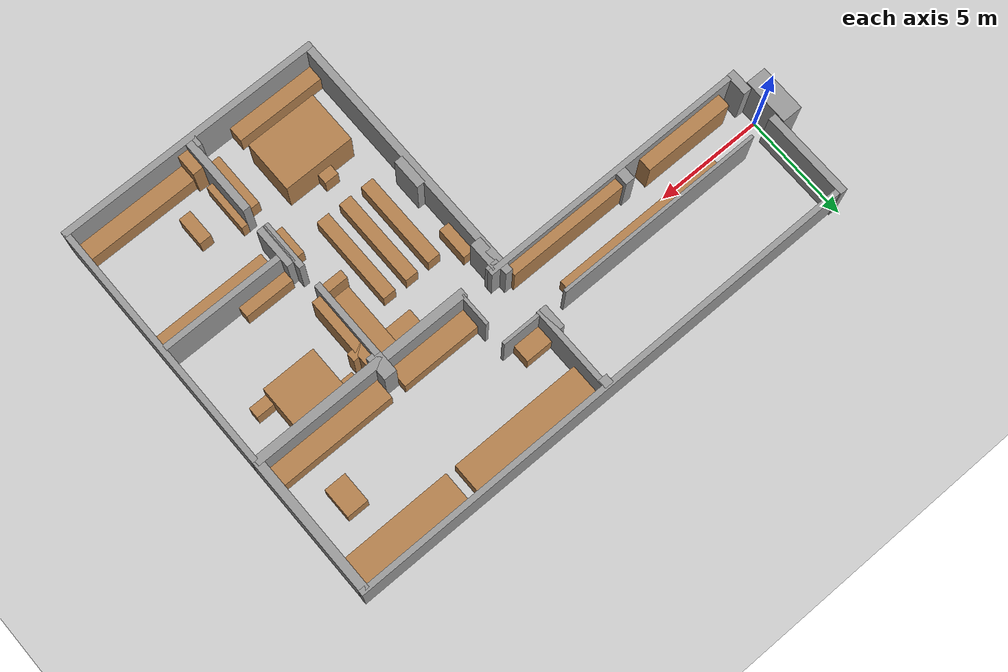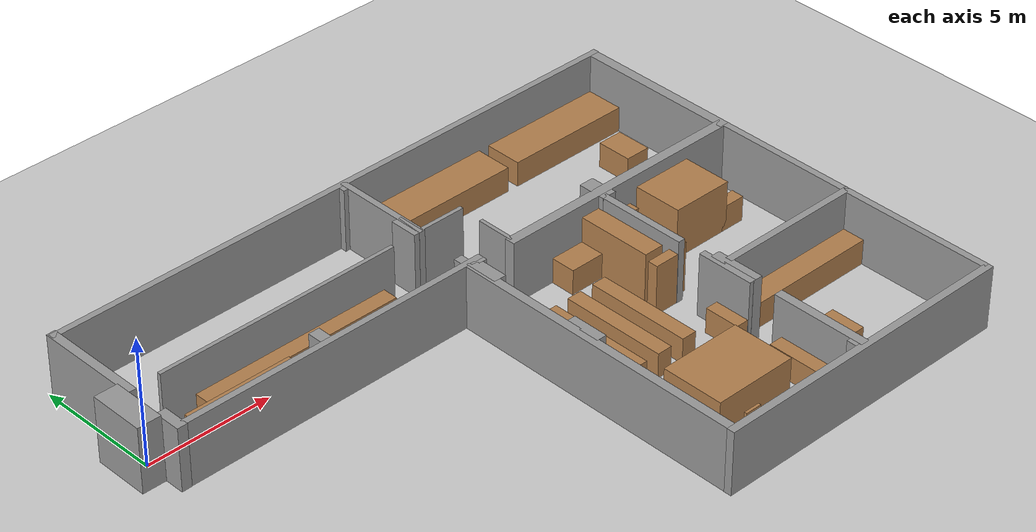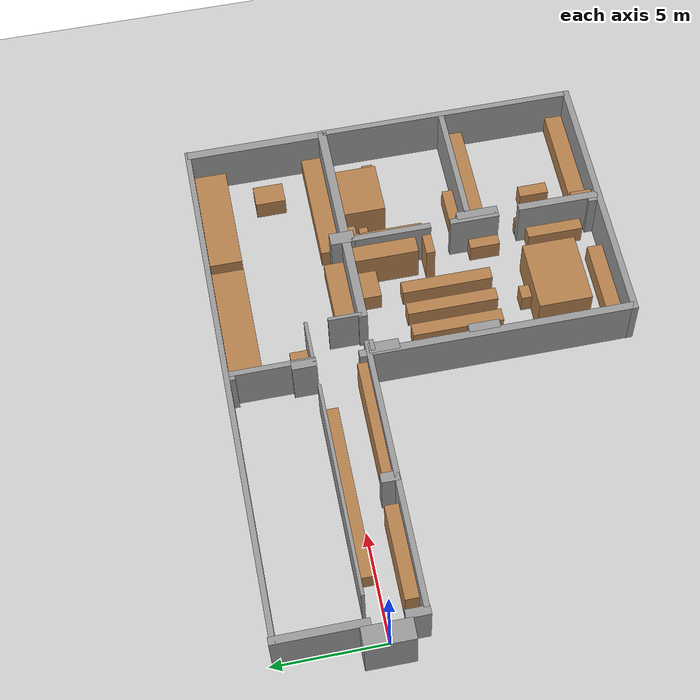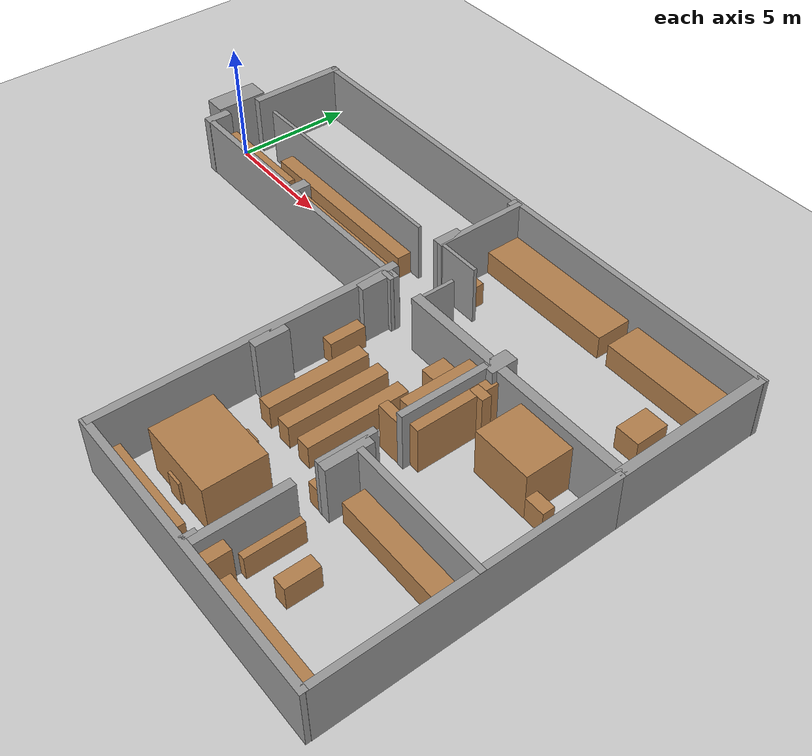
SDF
<sdf version="1.7">
 <world name="default">
  <light name="sun" type="directional">
   <pose>0 0 10 0 -0 0</pose>
   <diffuse>0.8 0.8 0.8 1</diffuse>
   <specular>0.2 0.2 0.2 1</specular>
   <attenuation>
    <range>1000</range>
    <constant>0.9</constant>
    <linear>0.01</linear>
    <quadratic>0.001</quadratic>
   </attenuation>
   <direction>-0.5 0.1 -0.9</direction>
   <spot><inner_angle>0</inner_angle><outer_angle>0</outer_angle><falloff>0</falloff></spot>
  </light>
  <model name="ground_plane">
   <static>1</static>
   <link name="link">
    <collision name="collision">
     <geometry><plane><normal>0 0 1</normal><size>100 100</size></plane></geometry>
     <surface>
      <contact><collide_bitmask>65535</collide_bitmask></contact>
      <friction><ode><mu>100</mu><mu2>50</mu2></ode></friction>
     </surface>
    </collision>
    <visual name="visual">
     <cast_shadows>0</cast_shadows>
     <geometry><plane><normal>0 0 1</normal><size>100 100</size></plane></geometry>
     <material>
      <script><uri>file://media/materials/scripts/gazebo.material</uri><name>Gazebo/Grey</name></script>
     </material>
    </visual>
   </link>
  </model>
  <gravity>0 0 -9.8</gravity>
  <magnetic_field>6e-06 2.3e-05 -4.2e-05</magnetic_field>
  <atmosphere type="adiabatic"/>
  <physics type="ode">
   <max_step_size>0.001</max_step_size>
   <real_time_factor>1</real_time_factor>
   <real_time_update_rate>1000</real_time_update_rate>
  </physics>
  <scene><ambient>0.4 0.4 0.4 1</ambient><background>0.7 0.7 0.7 1</background><shadows>1</shadows></scene>
  <spherical_coordinates>
   <surface_model>EARTH_WGS84</surface_model>
   <latitude_deg>0</latitude_deg>
   <longitude_deg>0</longitude_deg>
   <elevation>0</elevation>
   <heading_deg>0</heading_deg>
  </spherical_coordinates>
  <model name="pb">
   <pose>12.22 -4.38003 0 0 -0 3.14159</pose>
   <link name="Wall_10">
    <collision name="Wall_10_Collision">
     <geometry><box><size>4.123 0.35 2.5</size></box></geometry>
     <pose>0 0 1.25 0 -0 0</pose>
    </collision>
    <visual name="Wall_10_Visual">
     <pose>0 0 1.25 0 -0 0</pose>
     <geometry><box><size>4.123 0.35 2.5</size></box></geometry>
     <material>
      <script><uri>file://media/materials/scripts/gazebo.material</uri><name>Gazebo/Grey</name></script>
      <ambient>1 1 1 1</ambient>
     </material>
     <meta><layer>0</layer></meta>
    </visual>
    <pose>12.0345 -7.14851 0 0 -0 -1.5708</pose>
   </link>
   <link name="Wall_12">
    <collision name="Wall_12_Collision">
     <geometry><box><size>24.38 0.25 2.5</size></box></geometry>
     <pose>0 0 1.25 0 -0 0</pose>
    </collision>
    <visual name="Wall_12_Visual">
     <pose>0 0 1.25 0 -0 0</pose>
     <geometry><box><size>24.38 0.25 2.5</size></box></geometry>
     <material>
      <script><uri>file://media/materials/scripts/gazebo.material</uri><name>Gazebo/Grey</name></script>
      <ambient>1 1 1 1</ambient>
     </material>
     <meta><layer>0</layer></meta>
    </visual>
    <pose>-0.030495 -9.03401 0 0 -0 3.14151</pose>
   </link>
   <link name="Wall_16">
    <collision name="Wall_16_Collision">
     <geometry><box><size>6.5 0.4 2.5</size></box></geometry>
     <pose>0 0 1.25 0 -0 0</pose>
    </collision>
    <visual name="Wall_16_Visual">
     <pose>0 0 1.25 0 -0 0</pose>
     <geometry><box><size>6.5 0.4 2.5</size></box></geometry>
     <material>
      <script><uri>file://media/materials/scripts/gazebo.material</uri><name>Gazebo/Grey</name></script>
      <ambient>1 1 1 1</ambient>
     </material>
     <meta><layer>0</layer></meta>
    </visual>
    <pose>-12.0069 -5.81143 0 0 -0 -1.5708</pose>
   </link>
   <link name="Wall_18">
    <collision name="Wall_18_Collision">
     <geometry><box><size>9.8 0.15 2.5</size></box></geometry>
     <pose>0 0 1.25 0 -0 0</pose>
    </collision>
    <visual name="Wall_18_Visual">
     <pose>0 0 1.25 0 -0 0</pose>
     <geometry><box><size>9.8 0.15 2.5</size></box></geometry>
     <material>
      <script><uri>file://media/materials/scripts/gazebo.material</uri><name>Gazebo/Grey</name></script>
      <ambient>1 1 1 1</ambient>
     </material>
     <meta><layer>0</layer></meta>
    </visual>
    <pose>6.0015 -5.19601 0 0 -0 0</pose>
   </link>
   <link name="Wall_20">
    <collision name="Wall_20_Collision">
     <geometry><box><size>3.95 0.25 2.5</size></box></geometry>
     <pose>0 0 1.25 0 -0 0</pose>
    </collision>
    <visual name="Wall_20_Visual">
     <pose>0 0 1.25 0 -0 0</pose>
     <geometry><box><size>3.95 0.25 2.5</size></box></geometry>
     <material>
      <script><uri>file://media/materials/scripts/gazebo.material</uri><name>Gazebo/Grey</name></script>
      <ambient>1 1 1 1</ambient>
     </material>
     <meta><layer>0</layer></meta>
    </visual>
    <pose>-0.153495 -7.09801 0 0 -0 -1.5708</pose>
   </link>
   <link name="Wall_23">
    <collision name="Wall_23_Collision">
     <geometry><box><size>1.1 0.4 2.5</size></box></geometry>
     <pose>0 0 1.25 0 -0 0</pose>
    </collision>
    <visual name="Wall_23_Visual">
     <pose>0 0 1.25 0 -0 0</pose>
     <geometry><box><size>1.1 0.4 2.5</size></box></geometry>
     <material>
      <script><uri>file://media/materials/scripts/gazebo.material</uri><name>Gazebo/Grey</name></script>
      <ambient>1 1 1 1</ambient>
     </material>
     <meta><layer>0</layer></meta>
    </visual>
    <pose>-0.007495 -5.67401 0 0 -0 1.5708</pose>
   </link>
   <link name="Wall_25">
    <collision name="Wall_25_Collision">
     <geometry><box><size>0.41 0.4 2.5</size></box></geometry>
     <pose>0 0 1.25 0 -0 0</pose>
    </collision>
    <visual name="Wall_25_Visual">
     <pose>0 0 1.25 0 -0 0</pose>
     <geometry><box><size>0.41 0.4 2.5</size></box></geometry>
     <material>
      <script><uri>file://media/materials/scripts/gazebo.material</uri><name>Gazebo/Grey</name></script>
      <ambient>1 1 1 1</ambient>
     </material>
     <meta><layer>0</layer></meta>
    </visual>
    <pose>-0.041995 -8.87101 0 0 -0 1.5708</pose>
   </link>
   <link name="Wall_27">
    <collision name="Wall_27_Collision">
     <geometry><box><size>1.8 0.15 2.5</size></box></geometry>
     <pose>0 0 1.25 0 -0 0</pose>
    </collision>
    <visual name="Wall_27_Visual">
     <pose>0 0 1.25 0 -0 0</pose>
     <geometry><box><size>1.8 0.15 2.5</size></box></geometry>
     <material>
      <script><uri>file://media/materials/scripts/gazebo.material</uri><name>Gazebo/Grey</name></script>
      <ambient>1 1 1 1</ambient>
     </material>
     <meta><layer>0</layer></meta>
    </visual>
    <pose>-1.15254 -5.24313 0 0 -0 0</pose>
   </link>
   <link name="Wall_29">
    <collision name="Wall_29_Collision">
     <geometry><box><size>1.5 0.15 2.5</size></box></geometry>
     <pose>0 0 1.25 0 -0 0</pose>
    </collision>
    <visual name="Wall_29_Visual">
     <pose>0 0 1.25 0 -0 0</pose>
     <geometry><box><size>1.5 0.15 2.5</size></box></geometry>
     <material>
      <script><uri>file://media/materials/scripts/gazebo.material</uri><name>Gazebo/Grey</name></script>
      <ambient>1 1 1 1</ambient>
     </material>
     <meta><layer>0</layer></meta>
    </visual>
    <pose>-2.00363 -3.50726 0 0 -0 1.5708</pose>
   </link>
   <link name="Wall_34">
    <collision name="Wall_34_Collision">
     <geometry><box><size>10.25 0.4 2.5</size></box></geometry>
     <pose>0 0 1.25 0 -0 0</pose>
    </collision>
    <visual name="Wall_34_Visual">
     <pose>0 0 1.25 0 -0 0</pose>
     <geometry><box><size>10.25 0.4 2.5</size></box></geometry>
     <material>
      <script><uri>file://media/materials/scripts/gazebo.material</uri><name>Gazebo/Grey</name></script>
      <ambient>1 1 1 1</ambient>
     </material>
     <meta><layer>0</layer></meta>
    </visual>
    <pose>-6.96748 -2.71699 0 0 -0 0</pose>
   </link>
   <link name="Wall_36">
    <collision name="Wall_36_Collision">
     <geometry><box><size>1.1 0.6 2.5</size></box></geometry>
     <pose>0 0 1.25 0 -0 0</pose>
    </collision>
    <visual name="Wall_36_Visual">
     <pose>0 0 1.25 0 -0 0</pose>
     <geometry><box><size>1.1 0.6 2.5</size></box></geometry>
     <material>
      <script><uri>file://media/materials/scripts/gazebo.material</uri><name>Gazebo/Grey</name></script>
      <ambient>1 1 1 1</ambient>
     </material>
     <meta><layer>0</layer></meta>
    </visual>
    <pose>-6.10348 -2.86833 0 0 -0 1.5708</pose>
   </link>
   <link name="Wall_38">
    <collision name="Wall_38_Collision">
     <geometry><box><size>1.05 0.4 2.5</size></box></geometry>
     <pose>0 0 1.25 0 -0 0</pose>
    </collision>
    <visual name="Wall_38_Visual">
     <pose>0 0 1.25 0 -0 0</pose>
     <geometry><box><size>1.05 0.4 2.5</size></box></geometry>
     <material>
      <script><uri>file://media/materials/scripts/gazebo.material</uri><name>Gazebo/Grey</name></script>
      <ambient>1 1 1 1</ambient>
     </material>
     <meta><layer>0</layer></meta>
    </visual>
    <pose>12.0205 -3.17766 0 0 -0 1.5708</pose>
   </link>
   <link name="Wall_40">
    <collision name="Wall_40_Collision">
     <geometry><box><size>12.5 0.25 2.5</size></box></geometry>
     <pose>0 0 1.25 0 -0 0</pose>
    </collision>
    <visual name="Wall_40_Visual">
     <pose>0 0 1.25 0 -0 0</pose>
     <geometry><box><size>12.5 0.25 2.5</size></box></geometry>
     <material>
      <script><uri>file://media/materials/scripts/gazebo.material</uri><name>Gazebo/Grey</name></script>
      <ambient>1 1 1 1</ambient>
     </material>
     <meta><layer>0</layer></meta>
    </visual>
    <pose>5.63251 -2.79401 0 0 -0 0</pose>
   </link>
   <link name="Wall_42">
    <collision name="Wall_42_Collision">
     <geometry><box><size>3.63 0.28 2.5</size></box></geometry>
     <pose>0 0 1.25 0 -0 0</pose>
    </collision>
    <visual name="Wall_42_Visual">
     <pose>0 0 1.25 0 -0 0</pose>
     <geometry><box><size>3.63 0.28 2.5</size></box></geometry>
     <material>
      <script><uri>file://media/materials/scripts/gazebo.material</uri><name>Gazebo/Grey</name></script>
      <ambient>1 1 1 1</ambient>
     </material>
     <meta><layer>0</layer></meta>
    </visual>
    <pose>-5.95449 -0.64001 0 0 -0 -1.5708</pose>
   </link>
   <link name="Wall_44">
    <collision name="Wall_44_Collision">
     <geometry><box><size>12.35 0.35 2.5</size></box></geometry>
     <pose>0 0 1.25 0 -0 0</pose>
    </collision>
    <visual name="Wall_44_Visual">
     <pose>0 0 1.25 0 -0 0</pose>
     <geometry><box><size>12.35 0.35 2.5</size></box></geometry>
     <material>
      <script><uri>file://media/materials/scripts/gazebo.material</uri><name>Gazebo/Grey</name></script>
      <ambient>1 1 1 1</ambient>
     </material>
     <meta><layer>0</layer></meta>
    </visual>
    <pose>-0.014364 2.93286 0 0 -0 1.5708</pose>
   </link>
   <link name="Wall_46">
    <collision name="Wall_46_Collision">
     <geometry><box><size>0.8 0.45 2.5</size></box></geometry>
     <pose>0 0 1.25 0 -0 0</pose>
    </collision>
    <visual name="Wall_46_Visual">
     <pose>0 0 1.25 0 -0 0</pose>
     <geometry><box><size>0.8 0.45 2.5</size></box></geometry>
     <material>
      <script><uri>file://media/materials/scripts/gazebo.material</uri><name>Gazebo/Grey</name></script>
      <ambient>1 1 1 1</ambient>
     </material>
     <meta><layer>0</layer></meta>
    </visual>
    <pose>5.99173 -3.10066 0 0 -0 1.5708</pose>
   </link>
   <link name="Wall_48">
    <collision name="Wall_48_Collision">
     <geometry><box><size>1.35 0.5 2.5</size></box></geometry>
     <pose>0 0 1.25 0 -0 0</pose>
    </collision>
    <visual name="Wall_48_Visual">
     <pose>0 0 1.25 0 -0 0</pose>
     <geometry><box><size>1.35 0.5 2.5</size></box></geometry>
     <material>
      <script><uri>file://media/materials/scripts/gazebo.material</uri><name>Gazebo/Grey</name></script>
      <ambient>1 1 1 1</ambient>
     </material>
     <meta><layer>0</layer></meta>
    </visual>
    <pose>-0.197695 -2.11458 0 0 -0 -1.5708</pose>
   </link>
   <link name="Wall_50">
    <collision name="Wall_50_Collision">
     <geometry><box><size>0.55 0.2 2.5</size></box></geometry>
     <pose>0 0 1.25 0 -0 0</pose>
    </collision>
    <visual name="Wall_50_Visual">
     <pose>0 0 1.25 0 -0 0</pose>
     <geometry><box><size>0.55 0.2 2.5</size></box></geometry>
     <material>
      <script><uri>file://media/materials/scripts/gazebo.material</uri><name>Gazebo/Grey</name></script>
      <ambient>1 1 1 1</ambient>
     </material>
     <meta><layer>0</layer></meta>
    </visual>
    <pose>-0.33972 -2.61533 0 0 -0 0</pose>
   </link>
   <link name="Wall_52">
    <collision name="Wall_52_Collision">
     <geometry><box><size>1.4 0.4 2.5</size></box></geometry>
     <pose>0 0 1.25 0 -0 0</pose>
    </collision>
    <visual name="Wall_52_Visual">
     <pose>0 0 1.25 0 -0 0</pose>
     <geometry><box><size>1.4 0.4 2.5</size></box></geometry>
     <material>
      <script><uri>file://media/materials/scripts/gazebo.material</uri><name>Gazebo/Grey</name></script>
      <ambient>1 1 1 1</ambient>
     </material>
     <meta><layer>0</layer></meta>
    </visual>
    <pose>-0.31592 2.37269 0 0 -0 -1.5708</pose>
   </link>
   <link name="Wall_54">
    <collision name="Wall_54_Collision">
     <geometry><box><size>2.25 0.27 2.5</size></box></geometry>
     <pose>0 0 1.25 0 -0 0</pose>
    </collision>
    <visual name="Wall_54_Visual">
     <pose>0 0 1.25 0 -0 0</pose>
     <geometry><box><size>2.25 0.27 2.5</size></box></geometry>
     <material>
      <script><uri>file://media/materials/scripts/gazebo.material</uri><name>Gazebo/Grey</name></script>
      <ambient>1 1 1 1</ambient>
     </material>
     <meta><layer>0</layer></meta>
    </visual>
    <pose>-5.96272 3.21444 0 0 -0 1.5708</pose>
   </link>
   <link name="Wall_56">
    <collision name="Wall_56_Collision">
     <geometry><box><size>1.9 0.4 2.5</size></box></geometry>
     <pose>0 0 1.25 0 -0 0</pose>
    </collision>
    <visual name="Wall_56_Visual">
     <pose>0 0 1.25 0 -0 0</pose>
     <geometry><box><size>1.9 0.4 2.5</size></box></geometry>
     <material>
      <script><uri>file://media/materials/scripts/gazebo.material</uri><name>Gazebo/Grey</name></script>
      <ambient>1 1 1 1</ambient>
     </material>
     <meta><layer>0</layer></meta>
    </visual>
    <pose>-6.2015 3.39287 0 0 -0 -1.5708</pose>
   </link>
   <link name="Wall_58">
    <collision name="Wall_58_Collision">
     <geometry><box><size>5.9 0.27 2.5</size></box></geometry>
     <pose>0 0 1.25 0 -0 0</pose>
    </collision>
    <visual name="Wall_58_Visual">
     <pose>0 0 1.25 0 -0 0</pose>
     <geometry><box><size>5.9 0.27 2.5</size></box></geometry>
     <material>
      <script><uri>file://media/materials/scripts/gazebo.material</uri><name>Gazebo/Grey</name></script>
      <ambient>1 1 1 1</ambient>
     </material>
     <meta><layer>0</layer></meta>
    </visual>
    <pose>-9.2455 2.96577 0 0 -0 0</pose>
   </link>
   <link name="Wall_60">
    <collision name="Wall_60_Collision">
     <geometry><box><size>11.7 0.27 2.5</size></box></geometry>
     <pose>0 0 1.25 0 -0 0</pose>
    </collision>
    <visual name="Wall_60_Visual">
     <pose>0 0 1.25 0 -0 0</pose>
     <geometry><box><size>11.7 0.27 2.5</size></box></geometry>
     <material>
      <script><uri>file://media/materials/scripts/gazebo.material</uri><name>Gazebo/Grey</name></script>
      <ambient>1 1 1 1</ambient>
     </material>
     <meta><layer>0</layer></meta>
    </visual>
    <pose>-12.071 3.16852 0 0 -0 -1.5708</pose>
   </link>
   <link name="Wall_62">
    <collision name="Wall_62_Collision">
     <geometry><box><size>12.365 0.3 2.5</size></box></geometry>
     <pose>0 0 1.25 0 -0 0</pose>
    </collision>
    <visual name="Wall_62_Visual">
     <pose>0 0 1.25 0 -0 0</pose>
     <geometry><box><size>12.365 0.3 2.5</size></box></geometry>
     <material>
      <script><uri>file://media/materials/scripts/gazebo.material</uri><name>Gazebo/Grey</name></script>
      <ambient>1 1 1 1</ambient>
     </material>
     <meta><layer>0</layer></meta>
    </visual>
    <pose>-6.01551 9.06001 0 0 -0 0</pose>
   </link>
   <link name="Wall_64">
    <collision name="Wall_64_Collision">
     <geometry><box><size>3.7 0.35 2.5</size></box></geometry>
     <pose>0 0 1.25 0 -0 0</pose>
    </collision>
    <visual name="Wall_64_Visual">
     <pose>0 0 1.25 0 -0 0</pose>
     <geometry><box><size>3.7 0.35 2.5</size></box></geometry>
     <material>
      <script><uri>file://media/materials/scripts/gazebo.material</uri><name>Gazebo/Grey</name></script>
      <ambient>1 1 1 1</ambient>
     </material>
     <meta><layer>0</layer></meta>
    </visual>
    <pose>-6.11949 7.15048 0 0 -0 1.5708</pose>
   </link>
   <link name="Wall_66">
    <collision name="Wall_66_Collision">
     <geometry><box><size>0.55 0.2 2.5</size></box></geometry>
     <pose>0 0 1.25 0 -0 0</pose>
    </collision>
    <visual name="Wall_66_Visual">
     <pose>0 0 1.25 0 -0 0</pose>
     <geometry><box><size>0.55 0.2 2.5</size></box></geometry>
     <material>
      <script><uri>file://media/materials/scripts/gazebo.material</uri><name>Gazebo/Grey</name></script>
      <ambient>1 1 1 1</ambient>
     </material>
     <meta><layer>0</layer></meta>
    </visual>
    <pose>-5.87619 8.80038 0 0 -0 1.5708</pose>
   </link>
   <static>1</static>
  </model>
  <model name="pb_koniec">
   <pose>12.11 -4.38 0 0 -0 0</pose>
   <link name="Wall_0">
    <collision name="Wall_0_Collision">
     <geometry><box><size>4.23 0.61 2</size></box></geometry>
     <pose>0 0 1 0 -0 0</pose>
    </collision>
    <visual name="Wall_0_Visual">
     <pose>0 0 1 0 -0 0</pose>
     <geometry><box><size>4.23 0.61 2</size></box></geometry>
     <material>
      <script><uri>file://media/materials/scripts/gazebo.material</uri><name>Gazebo/Wood</name></script>
      <ambient>1 1 1 1</ambient>
     </material>
     <meta><layer>0</layer></meta>
    </visual>
    <pose>-9.01941 3.25059 0 0 -0 0</pose>
   </link>
   <link name="Wall_101">
    <collision name="Wall_101_Collision">
     <geometry><box><size>1 0.5 1</size></box></geometry>
     <pose>0 0 0.5 0 -0 0</pose>
    </collision>
    <visual name="Wall_101_Visual">
     <pose>0 0 0.5 0 -0 0</pose>
     <geometry><box><size>1 0.5 1</size></box></geometry>
     <material>
      <script><uri>file://media/materials/scripts/gazebo.material</uri><name>Gazebo/Wood</name></script>
      <ambient>1 1 1 1</ambient>
     </material>
     <meta><layer>0</layer></meta>
    </visual>
    <pose>7.59 2.28 0 0 -0 0</pose>
   </link>
   <link name="Wall_103">
    <collision name="Wall_103_Collision">
     <geometry><box><size>1 0.5 1</size></box></geometry>
     <pose>0 0 0.5 0 -0 0</pose>
    </collision>
    <visual name="Wall_103_Visual">
     <pose>0 0 0.5 0 -0 0</pose>
     <geometry><box><size>1 0.5 1</size></box></geometry>
     <material>
      <script><uri>file://media/materials/scripts/gazebo.material</uri><name>Gazebo/Wood</name></script>
      <ambient>1 1 1 1</ambient>
     </material>
     <meta><layer>0</layer></meta>
    </visual>
    <pose>10.518 0.835 0 0 -0 0</pose>
   </link>
   <link name="Wall_12">
    <collision name="Wall_12_Collision">
     <geometry><box><size>5.451 0.9 1</size></box></geometry>
     <pose>0 0 0.5 0 -0 0</pose>
    </collision>
    <visual name="Wall_12_Visual">
     <pose>0 0 0.5 0 -0 0</pose>
     <geometry><box><size>5.451 0.9 1</size></box></geometry>
     <material>
      <script><uri>file://media/materials/scripts/gazebo.material</uri><name>Gazebo/Wood</name></script>
      <ambient>1 1 1 1</ambient>
     </material>
     <meta><layer>0</layer></meta>
    </visual>
    <pose>9.2655 3.364 0 0 -0 0</pose>
   </link>
   <link name="Wall_18">
    <collision name="Wall_18_Collision">
     <geometry><box><size>1.38 1 1</size></box></geometry>
     <pose>0 0 0.5 0 -0 0</pose>
    </collision>
    <visual name="Wall_18_Visual">
     <pose>0 0 0.5 0 -0 0</pose>
     <geometry><box><size>1.38 1 1</size></box></geometry>
     <material>
      <script><uri>file://media/materials/scripts/gazebo.material</uri><name>Gazebo/Wood</name></script>
      <ambient>1 1 1 1</ambient>
     </material>
     <meta><layer>0</layer></meta>
    </visual>
    <pose>10.31 5.62 0 0 -0 -1.5708</pose>
   </link>
   <link name="Wall_2">
    <collision name="Wall_2_Collision">
     <geometry><box><size>5.62 0.45 2</size></box></geometry>
     <pose>0 0 1 0 -0 0</pose>
    </collision>
    <visual name="Wall_2_Visual">
     <pose>0 0 1 0 -0 0</pose>
     <geometry><box><size>5.62 0.45 2</size></box></geometry>
     <material>
      <script><uri>file://media/materials/scripts/gazebo.material</uri><name>Gazebo/Wood</name></script>
      <ambient>1 1 1 1</ambient>
     </material>
     <meta><layer>0</layer></meta>
    </visual>
    <pose>-2.855 3.15 0 0 -0 0</pose>
   </link>
   <link name="Wall_20">
    <collision name="Wall_20_Collision">
     <geometry><box><size>6.04 1.5 1</size></box></geometry>
     <pose>0 0 0.5 0 -0 0</pose>
    </collision>
    <visual name="Wall_20_Visual">
     <pose>0 0 0.5 0 -0 0</pose>
     <geometry><box><size>6.04 1.5 1</size></box></geometry>
     <material>
      <script><uri>file://media/materials/scripts/gazebo.material</uri><name>Gazebo/Wood</name></script>
      <ambient>1 1 1 1</ambient>
     </material>
     <meta><layer>0</layer></meta>
    </visual>
    <pose>3.4 8.18 0 0 -0 0</pose>
   </link>
   <link name="Wall_22">
    <collision name="Wall_22_Collision">
     <geometry><box><size>5.05 1.5 1</size></box></geometry>
     <pose>0 0 0.5 0 -0 0</pose>
    </collision>
    <visual name="Wall_22_Visual">
     <pose>0 0 0.5 0 -0 0</pose>
     <geometry><box><size>5.05 1.5 1</size></box></geometry>
     <material>
      <script><uri>file://media/materials/scripts/gazebo.material</uri><name>Gazebo/Wood</name></script>
      <ambient>1 1 1 1</ambient>
     </material>
     <meta><layer>0</layer></meta>
    </visual>
    <pose>9.395 8.18 0 0 -0 0</pose>
   </link>
   <link name="Wall_26">
    <collision name="Wall_26_Collision">
     <geometry><box><size>1.5 0.5 1</size></box></geometry>
     <pose>0 0 0.5 0 -0 0</pose>
    </collision>
    <visual name="Wall_26_Visual">
     <pose>0 0 0.5 0 -0 0</pose>
     <geometry><box><size>1.5 0.5 1</size></box></geometry>
     <material>
      <script><uri>file://media/materials/scripts/gazebo.material</uri><name>Gazebo/Wood</name></script>
      <ambient>1 1 1 1</ambient>
     </material>
     <meta><layer>0</layer></meta>
    </visual>
    <pose>0.540001 0.57 0 0 -0 1.5708</pose>
   </link>
   <link name="Wall_28">
    <collision name="Wall_28_Collision">
     <geometry><box><size>4.14 0.6 1</size></box></geometry>
     <pose>0 0 0.5 0 -0 0</pose>
    </collision>
    <visual name="Wall_28_Visual">
     <pose>0 0 0.5 0 -0 0</pose>
     <geometry><box><size>4.14 0.6 1</size></box></geometry>
     <material>
      <script><uri>file://media/materials/scripts/gazebo.material</uri><name>Gazebo/Wood</name></script>
      <ambient>1 1 1 1</ambient>
     </material>
     <meta><layer>0</layer></meta>
    </visual>
    <pose>1.71 -1.496 0 0 -0 -1.5708</pose>
   </link>
   <link name="Wall_32">
    <collision name="Wall_32_Collision">
     <geometry><box><size>4.14 0.6 1</size></box></geometry>
     <pose>0 0 0.5 0 -0 0</pose>
    </collision>
    <visual name="Wall_32_Visual">
     <pose>0 0 0.5 0 -0 0</pose>
     <geometry><box><size>4.14 0.6 1</size></box></geometry>
     <material>
      <script><uri>file://media/materials/scripts/gazebo.material</uri><name>Gazebo/Wood</name></script>
      <ambient>1 1 1 1</ambient>
     </material>
     <meta><layer>0</layer></meta>
    </visual>
    <pose>2.84 -1.496 0 0 -0 -1.5708</pose>
   </link>
   <link name="Wall_34">
    <collision name="Wall_34_Collision">
     <geometry><box><size>4.14 0.6 1</size></box></geometry>
     <pose>0 0 0.5 0 -0 0</pose>
    </collision>
    <visual name="Wall_34_Visual">
     <pose>0 0 0.5 0 -0 0</pose>
     <geometry><box><size>4.14 0.6 1</size></box></geometry>
     <material>
      <script><uri>file://media/materials/scripts/gazebo.material</uri><name>Gazebo/Wood</name></script>
      <ambient>1 1 1 1</ambient>
     </material>
     <meta><layer>0</layer></meta>
    </visual>
    <pose>3.98 -1.496 0 0 -0 -1.5708</pose>
   </link>
   <link name="Wall_4">
    <collision name="Wall_4_Collision">
     <geometry><box><size>8 0.62 1</size></box></geometry>
     <pose>0 0 0.5 0 -0 0</pose>
    </collision>
    <visual name="Wall_4_Visual">
     <pose>0 0 0.5 0 -0 0</pose>
     <geometry><box><size>8 0.62 1</size></box></geometry>
     <material>
      <script><uri>file://media/materials/scripts/gazebo.material</uri><name>Gazebo/Wood</name></script>
      <ambient>1 1 1 1</ambient>
     </material>
     <meta><layer>0</layer></meta>
    </visual>
    <pose>-5.47 4.825 0 0 -0 0</pose>
   </link>
   <link name="Wall_40">
    <collision name="Wall_40_Collision">
     <geometry><box><size>0.99 0.4 2</size></box></geometry>
     <pose>0 0 1 0 -0 0</pose>
    </collision>
    <visual name="Wall_40_Visual">
     <pose>0 0 1 0 -0 0</pose>
     <geometry><box><size>0.99 0.4 2</size></box></geometry>
     <material>
      <script><uri>file://media/materials/scripts/gazebo.material</uri><name>Gazebo/Wood</name></script>
      <ambient>1 1 1 1</ambient>
     </material>
     <meta><layer>0</layer></meta>
    </visual>
    <pose>5.43 -0.96 0 0 -0 0</pose>
   </link>
   <link name="Wall_43">
    <collision name="Wall_43_Collision">
     <geometry><box><size>3 0.79 2</size></box></geometry>
     <pose>0 0 1 0 -0 0</pose>
    </collision>
    <visual name="Wall_43_Visual">
     <pose>0 0 1 0 -0 0</pose>
     <geometry><box><size>3 0.79 2</size></box></geometry>
     <material>
      <script><uri>file://media/materials/scripts/gazebo.material</uri><name>Gazebo/Wood</name></script>
      <ambient>1 1 1 1</ambient>
     </material>
     <meta><layer>0</layer></meta>
    </visual>
    <pose>5.53 1.055 0 0 -0 1.5708</pose>
   </link>
   <link name="Wall_47">
    <collision name="Wall_47_Collision">
     <geometry><box><size>1.38 1 1</size></box></geometry>
     <pose>0 0 0.5 0 -0 0</pose>
    </collision>
    <visual name="Wall_47_Visual">
     <pose>0 0 0.5 0 -0 0</pose>
     <geometry><box><size>1.38 1 1</size></box></geometry>
     <material>
      <script><uri>file://media/materials/scripts/gazebo.material</uri><name>Gazebo/Wood</name></script>
      <ambient>1 1 1 1</ambient>
     </material>
     <meta><layer>0</layer></meta>
    </visual>
    <pose>4.45 2.052 0 0 -0 0</pose>
   </link>
   <link name="Wall_52">
    <collision name="Wall_52_Collision">
     <geometry><box><size>1.38 0.51 1</size></box></geometry>
     <pose>0 0 0.5 0 -0 0</pose>
    </collision>
    <visual name="Wall_52_Visual">
     <pose>0 0 0.5 0 -0 0</pose>
     <geometry><box><size>1.38 0.51 1</size></box></geometry>
     <material>
      <script><uri>file://media/materials/scripts/gazebo.material</uri><name>Gazebo/Wood</name></script>
      <ambient>1 1 1 1</ambient>
     </material>
     <meta><layer>0</layer></meta>
    </visual>
    <pose>5.69 -3.635 0 0 -0 -1.5708</pose>
   </link>
   <link name="Wall_55">
    <collision name="Wall_55_Collision">
     <geometry><box><size>2.56 0.56 1</size></box></geometry>
     <pose>0 0 0.5 0 -0 0</pose>
    </collision>
    <visual name="Wall_55_Visual">
     <pose>0 0 0.5 0 -0 0</pose>
     <geometry><box><size>2.56 0.56 1</size></box></geometry>
     <material>
      <script><uri>file://media/materials/scripts/gazebo.material</uri><name>Gazebo/Wood</name></script>
      <ambient>1 1 1 1</ambient>
     </material>
     <meta><layer>0</layer></meta>
    </visual>
    <pose>5.775 -6.9805 0 0 -0 -1.5708</pose>
   </link>
   <link name="Wall_59">
    <collision name="Wall_59_Collision">
     <geometry><box><size>4.14 0.7 1</size></box></geometry>
     <pose>0 0 0.5 0 -0 0</pose>
    </collision>
    <visual name="Wall_59_Visual">
     <pose>0 0 0.5 0 -0 0</pose>
     <geometry><box><size>4.14 0.7 1</size></box></geometry>
     <material>
      <script><uri>file://media/materials/scripts/gazebo.material</uri><name>Gazebo/Wood</name></script>
      <ambient>1 1 1 1</ambient>
     </material>
     <meta><layer>0</layer></meta>
    </visual>
    <pose>2.365 -8.55 0 0 -0 0</pose>
   </link>
   <link name="Wall_6">
    <collision name="Wall_6_Collision">
     <geometry><box><size>1.6 0.8 1</size></box></geometry>
     <pose>0 0 0.5 0 -0 0</pose>
    </collision>
    <visual name="Wall_6_Visual">
     <pose>0 0 0.5 0 -0 0</pose>
     <geometry><box><size>1.6 0.8 1</size></box></geometry>
     <material>
      <script><uri>file://media/materials/scripts/gazebo.material</uri><name>Gazebo/Wood</name></script>
      <ambient>1 1 1 1</ambient>
     </material>
     <meta><layer>0</layer></meta>
    </visual>
    <pose>0.84 5.73 0 0 -0 0</pose>
   </link>
   <link name="Wall_61">
    <collision name="Wall_61_Collision">
     <geometry><box><size>3.28 2.42 2</size></box></geometry>
     <pose>0 0 1 0 -0 0</pose>
    </collision>
    <visual name="Wall_61_Visual">
     <pose>0 0 1 0 -0 0</pose>
     <geometry><box><size>3.28 2.42 2</size></box></geometry>
     <material>
      <script><uri>file://media/materials/scripts/gazebo.material</uri><name>Gazebo/Wood</name></script>
      <ambient>1 1 1 1</ambient>
     </material>
     <meta><layer>0</layer></meta>
    </visual>
    <pose>2.82 -6.295 0 0 -0 0</pose>
   </link>
   <link name="Wall_67">
    <collision name="Wall_67_Collision">
     <geometry><box><size>3 0.66 1</size></box></geometry>
     <pose>0 0 0.5 0 -0 0</pose>
    </collision>
    <visual name="Wall_67_Visual">
     <pose>0 0 0.5 0 -0 0</pose>
     <geometry><box><size>3 0.66 1</size></box></geometry>
     <material>
      <script><uri>file://media/materials/scripts/gazebo.material</uri><name>Gazebo/Wood</name></script>
      <ambient>1 1 1 1</ambient>
     </material>
     <meta><layer>0</layer></meta>
    </visual>
    <pose>2.66 -6.11 0 0 -0 -1.5708</pose>
   </link>
   <link name="Wall_71">
    <collision name="Wall_71_Collision">
     <geometry><box><size>5.27 0.9 1</size></box></geometry>
     <pose>0 0 0.5 0 -0 0</pose>
    </collision>
    <visual name="Wall_71_Visual">
     <pose>0 0 0.5 0 -0 0</pose>
     <geometry><box><size>5.27 0.9 1</size></box></geometry>
     <material>
      <script><uri>file://media/materials/scripts/gazebo.material</uri><name>Gazebo/Wood</name></script>
      <ambient>1 1 1 1</ambient>
     </material>
     <meta><layer>0</layer></meta>
    </visual>
    <pose>9.41 -3.535 0 0 -0 3.14159</pose>
   </link>
   <link name="Wall_73">
    <collision name="Wall_73_Collision">
     <geometry><box><size>5.6 0.8 1</size></box></geometry>
     <pose>0 0 0.5 0 -0 0</pose>
    </collision>
    <visual name="Wall_73_Visual">
     <pose>0 0 0.5 0 -0 0</pose>
     <geometry><box><size>5.6 0.8 1</size></box></geometry>
     <material>
      <script><uri>file://media/materials/scripts/gazebo.material</uri><name>Gazebo/Wood</name></script>
      <ambient>1 1 1 1</ambient>
     </material>
     <meta><layer>0</layer></meta>
    </visual>
    <pose>9.26 -8.5 0 0 -0 0</pose>
   </link>
   <link name="Wall_75">
    <collision name="Wall_75_Collision">
     <geometry><box><size>1 0.5 2</size></box></geometry>
     <pose>0 0 1 0 -0 0</pose>
    </collision>
    <visual name="Wall_75_Visual">
     <pose>0 0 1 0 -0 0</pose>
     <geometry><box><size>1 0.5 2</size></box></geometry>
     <material>
      <script><uri>file://media/materials/scripts/gazebo.material</uri><name>Gazebo/Wood</name></script>
      <ambient>1 1 1 1</ambient>
     </material>
     <meta><layer>0</layer></meta>
    </visual>
    <pose>6.64 -8.43 0 0 -0 1.5708</pose>
   </link>
   <link name="Wall_77">
    <collision name="Wall_77_Collision">
     <geometry><box><size>2.25 0.3 1</size></box></geometry>
     <pose>0 0 0.5 0 -0 0</pose>
    </collision>
    <visual name="Wall_77_Visual">
     <pose>0 0 0.5 0 -0 0</pose>
     <geometry><box><size>2.25 0.3 1</size></box></geometry>
     <material>
      <script><uri>file://media/materials/scripts/gazebo.material</uri><name>Gazebo/Wood</name></script>
      <ambient>1 1 1 1</ambient>
     </material>
     <meta><layer>0</layer></meta>
    </visual>
    <pose>6.55 -6.415 0 0 -0 -1.5708</pose>
   </link>
   <link name="Wall_79">
    <collision name="Wall_79_Collision">
     <geometry><box><size>1.339 0.57 1</size></box></geometry>
     <pose>0 0 0.5 0 -0 0</pose>
    </collision>
    <visual name="Wall_79_Visual">
     <pose>0 0 0.5 0 -0 0</pose>
     <geometry><box><size>1.339 0.57 1</size></box></geometry>
     <material>
      <script><uri>file://media/materials/scripts/gazebo.material</uri><name>Gazebo/Wood</name></script>
      <ambient>1 1 1 1</ambient>
     </material>
     <meta><layer>0</layer></meta>
    </visual>
    <pose>8.08 -6.5245 0 0 -0 -1.5708</pose>
   </link>
   <link name="Wall_8">
    <collision name="Wall_8_Collision">
     <geometry><box><size>3.728 0.9 1</size></box></geometry>
     <pose>0 0 0.5 0 -0 0</pose>
    </collision>
    <visual name="Wall_8_Visual">
     <pose>0 0 0.5 0 -0 0</pose>
     <geometry><box><size>3.728 0.9 1</size></box></geometry>
     <material>
      <script><uri>file://media/materials/scripts/gazebo.material</uri><name>Gazebo/Wood</name></script>
      <ambient>1 1 1 1</ambient>
     </material>
     <meta><layer>0</layer></meta>
    </visual>
    <pose>4.026 3.364 0 0 -0 3.14159</pose>
   </link>
   <link name="Wall_87">
    <collision name="Wall_87_Collision">
     <geometry><box><size>2.3 0.5 1</size></box></geometry>
     <pose>0 0 0.5 0 -0 0</pose>
    </collision>
    <visual name="Wall_87_Visual">
     <pose>0 0 0.5 0 -0 0</pose>
     <geometry><box><size>2.3 0.5 1</size></box></geometry>
     <material>
      <script><uri>file://media/materials/scripts/gazebo.material</uri><name>Gazebo/Wood</name></script>
      <ambient>1 1 1 1</ambient>
     </material>
     <meta><layer>0</layer></meta>
    </visual>
    <pose>7.66 -2.57 0 0 -0 0</pose>
   </link>
   <link name="Wall_89">
    <collision name="Wall_89_Collision">
     <geometry><box><size>3.5 0.42 2</size></box></geometry>
     <pose>0 0 1 0 -0 0</pose>
    </collision>
    <visual name="Wall_89_Visual">
     <pose>0 0 1 0 -0 0</pose>
     <geometry><box><size>3.5 0.42 2</size></box></geometry>
     <material>
      <script><uri>file://media/materials/scripts/gazebo.material</uri><name>Gazebo/Wood</name></script>
      <ambient>1 1 1 1</ambient>
     </material>
     <meta><layer>0</layer></meta>
    </visual>
    <pose>6.41 0.88 0 0 -0 1.5708</pose>
   </link>
   <link name="Wall_93">
    <collision name="Wall_93_Collision">
     <geometry><box><size>0.66 0.4 2</size></box></geometry>
     <pose>0 0 1 0 -0 0</pose>
    </collision>
    <visual name="Wall_93_Visual">
     <pose>0 0 1 0 -0 0</pose>
     <geometry><box><size>0.66 0.4 2</size></box></geometry>
     <material>
      <script><uri>file://media/materials/scripts/gazebo.material</uri><name>Gazebo/Wood</name></script>
      <ambient>1 1 1 1</ambient>
     </material>
     <meta><layer>0</layer></meta>
    </visual>
    <pose>6.555 1.791 0 0 -0 3.14159</pose>
   </link>
   <link name="Wall_97">
    <collision name="Wall_97_Collision">
     <geometry><box><size>2.45 1.95 2</size></box></geometry>
     <pose>0 0 1 0 -0 0</pose>
    </collision>
    <visual name="Wall_97_Visual">
     <pose>0 0 1 0 -0 0</pose>
     <geometry><box><size>2.45 1.95 2</size></box></geometry>
     <material>
      <script><uri>file://media/materials/scripts/gazebo.material</uri><name>Gazebo/Wood</name></script>
      <ambient>1 1 1 1</ambient>
     </material>
     <meta><layer>0</layer></meta>
    </visual>
    <pose>8.97 1.56 0 0 -0 0</pose>
   </link>
   <static>1</static>
  </model>
  <model name="unit_box">
   <pose>-0.461303 0.115446 1.29605 0 0 -0.005876</pose>
   <link name="link">
    <inertial>
     <mass>1</mass>
     <inertia>
      <ixx>0.166667</ixx>
      <ixy>0</ixy>
      <ixz>0</ixz>
      <iyy>0.166667</iyy>
      <iyz>0</iyz>
      <izz>0.166667</izz>
     </inertia>
    </inertial>
    <collision name="collision"><geometry><box><size>0.930898 2.16172 2.59211</size></box></geometry></collision>
    <visual name="visual">
     <geometry><box><size>0.930898 2.16172 2.59211</size></box></geometry>
     <material>
      <script><name>Gazebo/Grey</name><uri>file://media/materials/scripts/gazebo.material</uri></script>
     </material>
    </visual>
   </link>
  </model>
 </world>
</sdf>
